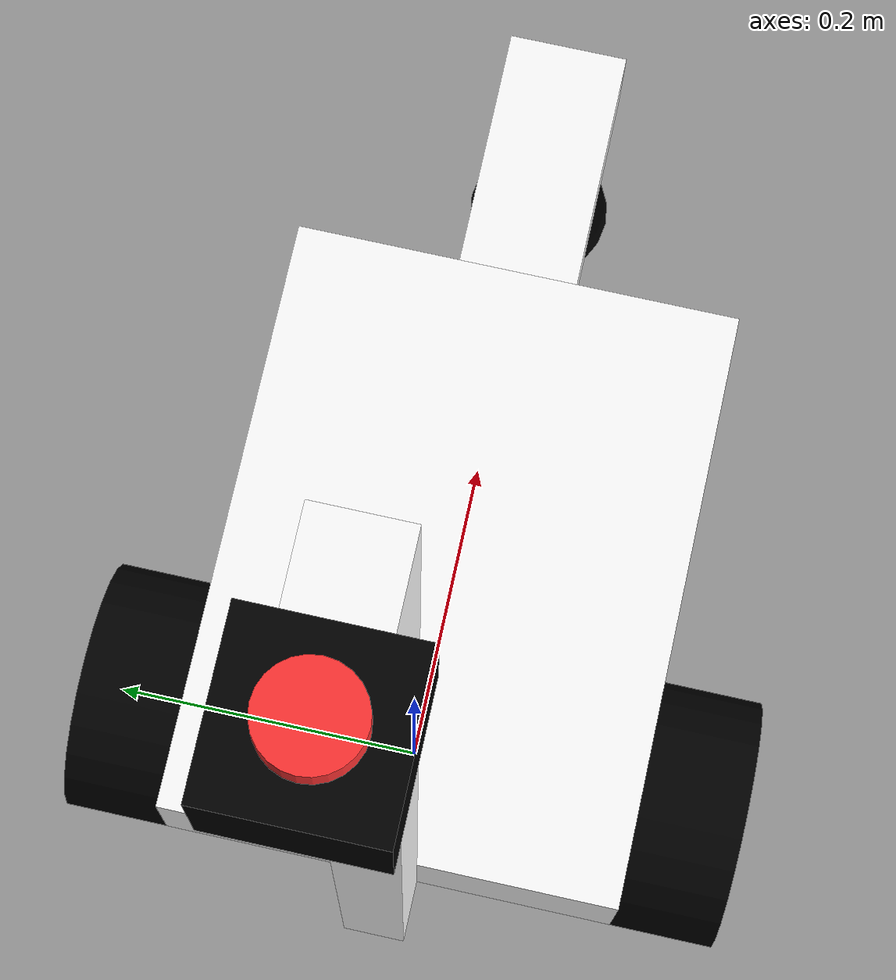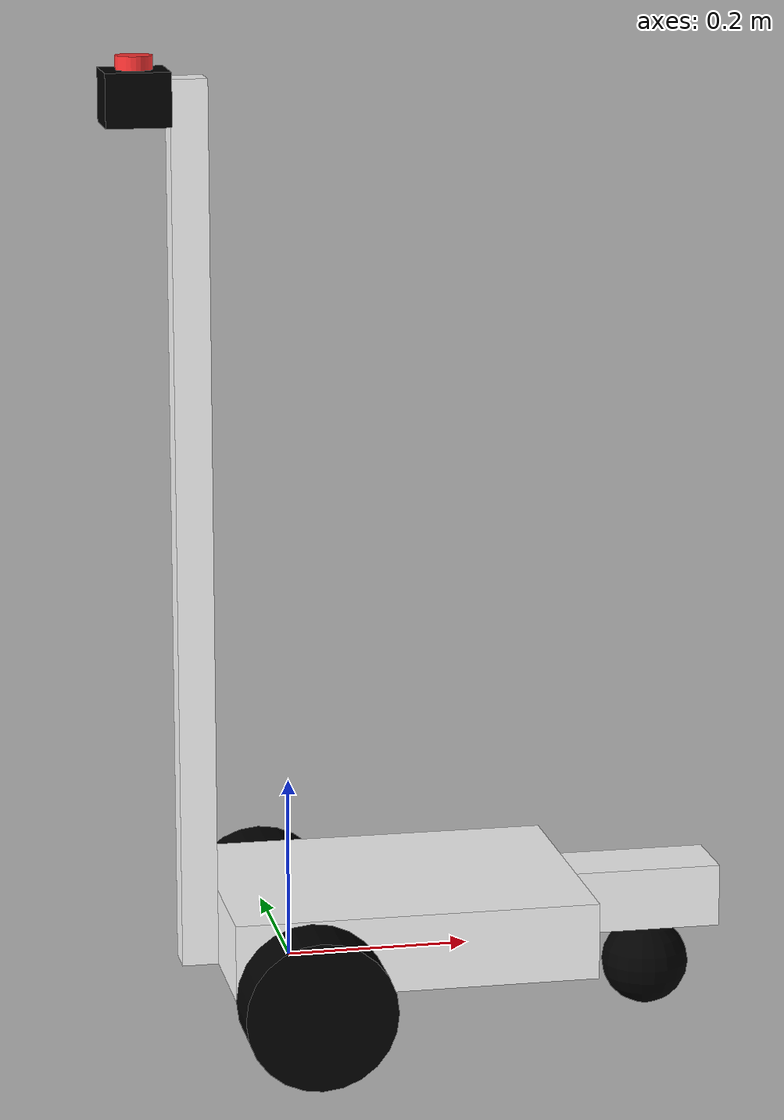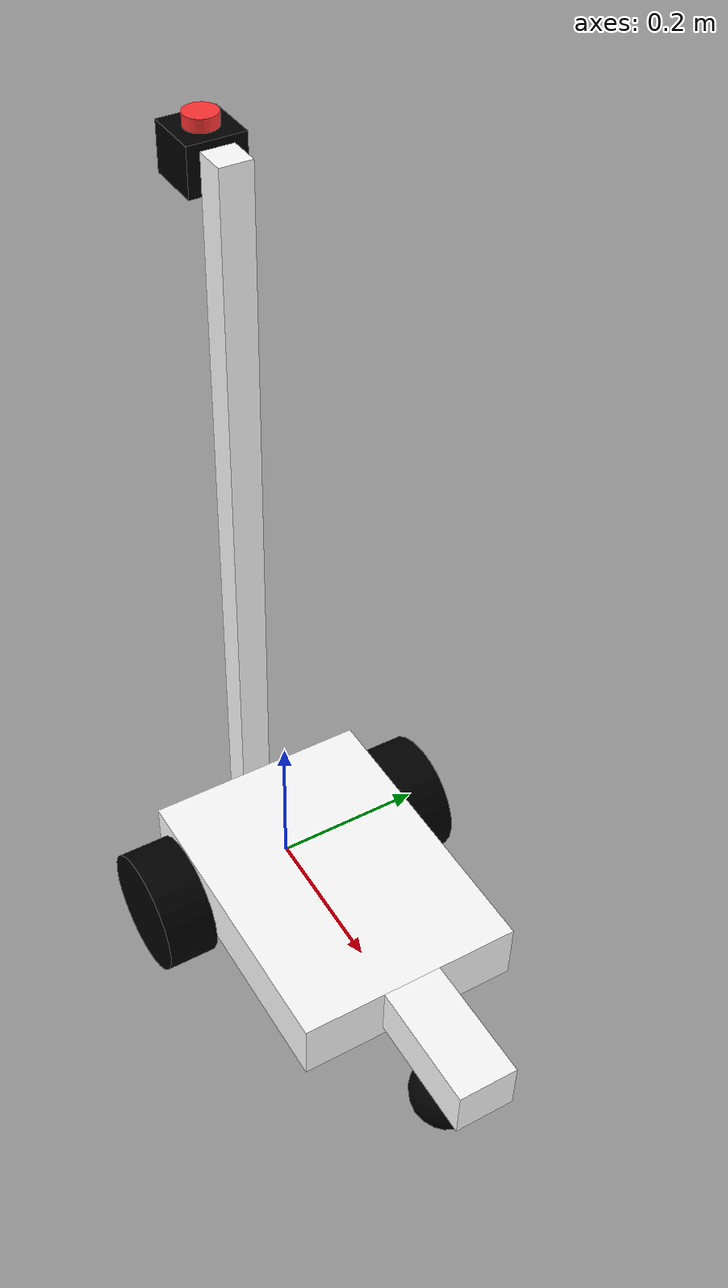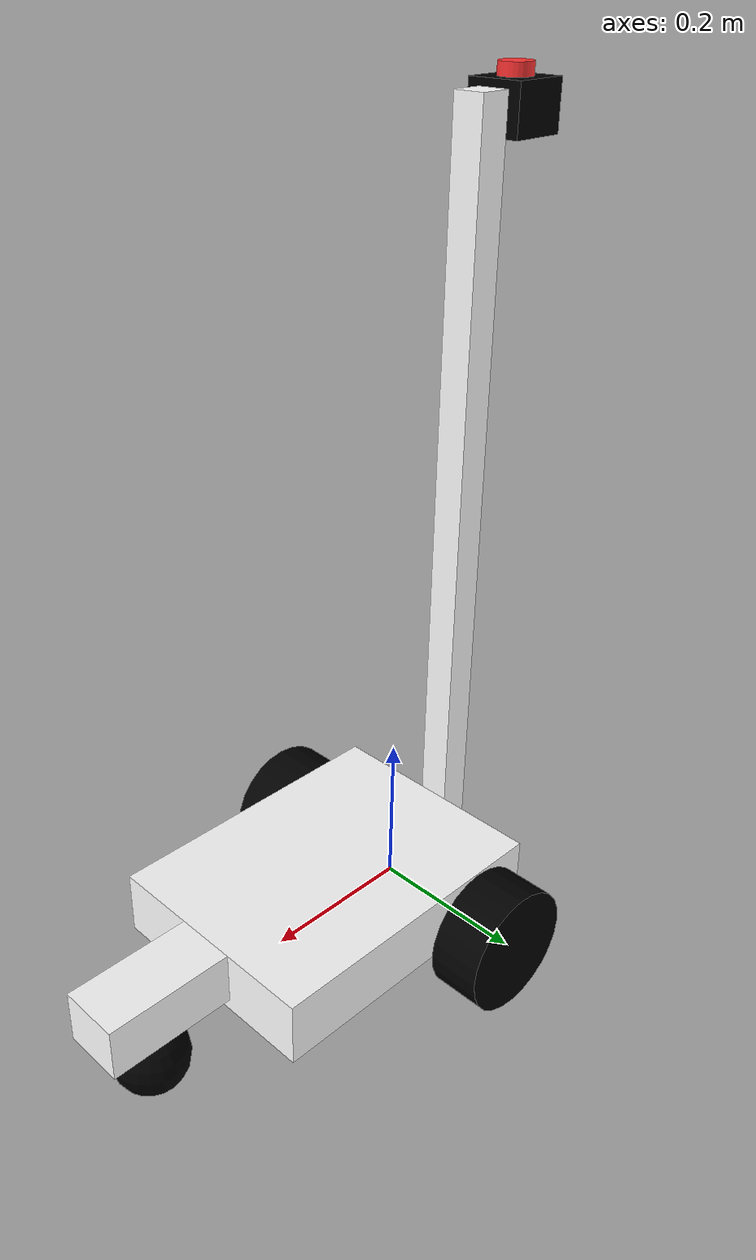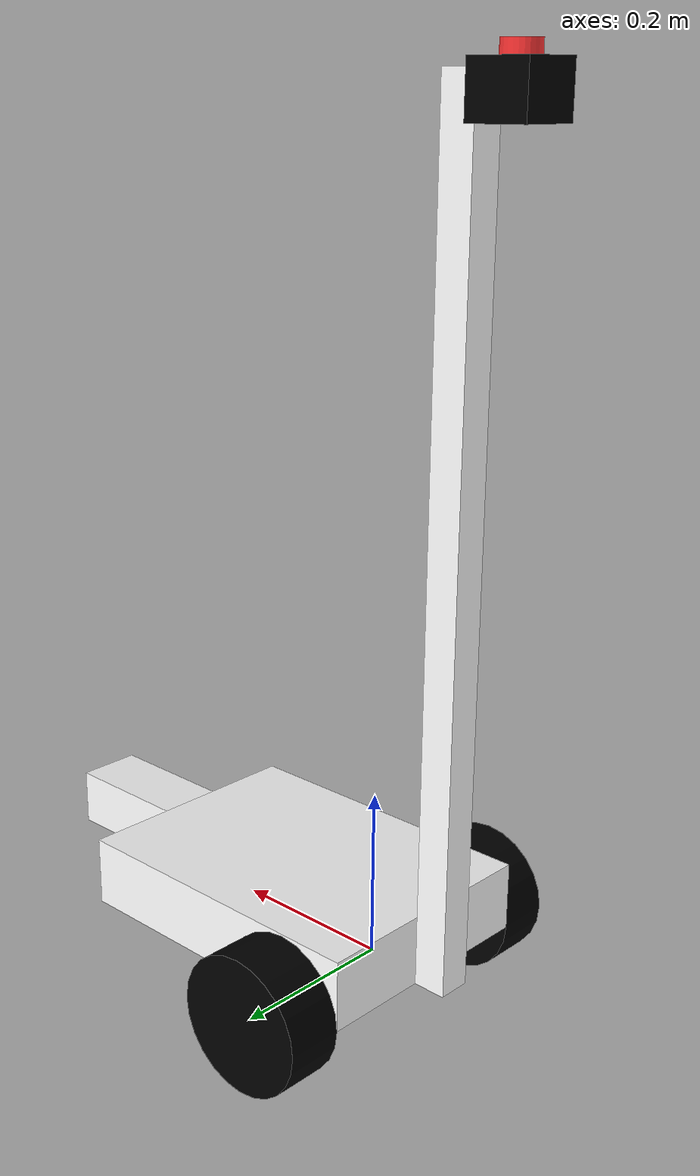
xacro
<?xml version="1.0"?>
<robot xmlns:xacro="http://www.ros.org/wiki/xacro" >

    <!-- Body Dimensions -->
    <xacro:property name="main_body_x_dim" value="0.4"/>
    <xacro:property name="main_body_y_dim" value="0.3"/>
    <xacro:property name="main_body_z_dim" value="0.085"/>

    <!-- Front Wheel Mount Dimensions -->
    <xacro:property name="front_wheel_mount_x_dim" value="0.165"/>
    <xacro:property name="front_wheel_mount_y_dim" value="0.08"/>
    <xacro:property name="front_wheel_mount_z_dim" value="0.07"/>

    <!-- Camera Mount Dimensions -->
    <xacro:property name="camera_mount_x_dim" value="0.04"/>
    <xacro:property name="camera_mount_y_dim" value="0.04"/>
    <xacro:property name="camera_mount_z_dim" value="0.975"/>

    <!-- Emergency Button Dimensions -->
    <xacro:property name="emergency_mount_x_dim" value="0.07"/>
    <xacro:property name="emergency_mount_y_dim" value="0.07"/>
    <xacro:property name="emergency_mount_z_dim" value="0.058"/>

    <xacro:property name="emergency_button_radius" value="0.02"/>
    <xacro:property name="emergency_button_length" value="0.03"/>

    <!-- Rear Wheel Dimensions -->
    <xacro:property name="wheel_link_radius" value="0.08255"/>
    <xacro:property name="wheel_link_length" value="0.068"/>
    <xacro:property name="wheel_link_z_location" value="0"/>

    <!-- Front Wheel Dimensions -->
    <xacro:property name="front_wheel_link_radius" value="${(wheel_link_radius+(main_body_z_dim-front_wheel_mount_z_dim))/2}"/>
    <xacro:property name="front_wheel_link_length" value="0.015"/>
    <xacro:property name="front_wheel_link_x_offset" value="0.075"/>
    <xacro:property name="front_wheel_link_x_location" value="${main_body_x_dim+front_wheel_mount_x_dim-wheel_link_radius-front_wheel_link_x_offset}"/>

    <!-- Material Density -->
    <xacro:property name="body_density" value="2710.0"/>
    <xacro:property name="wheel_density" value="2710.0"/>
    <xacro:property name="front_wheel_density" value="2710.0"/>
    <xacro:property name="emergency_button_density" value="2710.0"/>

    <!-- Pi Constant -->
    <xacro:property name="pi_const" value="3.14159265"/>

    <!-- Masses -->
    <xacro:property name="main_body_mass" value="${body_density*main_body_x_dim*main_body_y_dim*main_body_z_dim*0.41}"/>
    <xacro:property name="wheel_mount_mass" value="${body_density*front_wheel_mount_x_dim*front_wheel_mount_y_dim*front_wheel_mount_z_dim*0.41}"/>
    <xacro:property name="camera_mount_mass" value="${body_density*camera_mount_x_dim*camera_mount_y_dim*camera_mount_z_dim}"/>
    <xacro:property name="emergency_mount_mass" value="${emergency_button_density*emergency_mount_x_dim*emergency_mount_y_dim*emergency_mount_z_dim}"/>
    <xacro:property name="emergency_button_mass" value="${emergency_button_density*pi_const*emergency_button_radius*emergency_button_radius*emergency_button_length}"/>

    <xacro:property name="wheel_mass" value="${wheel_density*pi_const*wheel_link_radius*wheel_link_radius*wheel_link_length}"/>
    <xacro:property name="front_wheel_mass" value="${front_wheel_density*pi_const*front_wheel_link_radius*front_wheel_link_radius*front_wheel_link_length}"/>

    <!-- Moments of Inertia of the Wheels -->
    <xacro:property name="Iz_wheel" value="${0.5*wheel_mass*wheel_link_radius*wheel_link_radius}"/>
    <xacro:property name="I_wheel" value="${(1.0/12.0)*wheel_mass*(3.0*wheel_link_radius*wheel_link_radius+wheel_link_length*wheel_link_length)}"/>

    <xacro:property name="Iz_front_wheel" value="${0.5*front_wheel_mass*front_wheel_link_radius*front_wheel_link_radius}"/>
    <xacro:property name="I_front_wheel" value="${(1.0/12.0)*front_wheel_mass*(3.0*front_wheel_link_radius*front_wheel_link_radius+front_wheel_link_length*front_wheel_link_length)}"/>

    <material name="black">
        <color rgba="0 0 0 1"/>
    </material>

    <material name="white">
        <color rgba="1 1 1 1"/>
    </material>

    <material name="red">
        <color rgba="1 0.2 0.2 1"/>
    </material>

    <material name="blue">
        <color rgba="0.2 0.2 1 1"/>
    </material>

    <xacro:macro name="inertia_wheel">
        <inertial>
            <origin rpy="0 0 0" xyz="0 0 0"/>
            <mass value="${wheel_mass}"/>
            <inertia ixx="${I_wheel}" ixy="0.0" ixz="0.0" iyy="${I_wheel}" iyz="0.0" izz="${Iz_wheel}" />
        </inertial>
    </xacro:macro>

    <xacro:macro name="inertia_front_wheel">
        <inertial>
            <origin rpy="0 0 0" xyz="0 0 0"/>
            <mass value="${front_wheel_mass}"/>
            <inertia ixx="${I_front_wheel}" ixy="0.0" ixz="0.0" iyy="${I_front_wheel}" iyz="0.0" izz="${Iz_front_wheel}" />
        </inertial>
    </xacro:macro>

    <!-- BASE LINK -->

   <link name="base_footprint"/>

    <joint name="base_joint" type="fixed">
        <parent link="base_footprint"/>front_
        <child link="base_link"/>front_
        <origin xyz="0 0 0" rpy="0 0 0"/>
    </joint>

     <link name="base_link">
    </link>

    <!-- CHASSIS LINK -->
    <joint name="chassis_joint" type="fixed">
        <parent link="base_link"/>front_
        <child link="chassis"/>front_
        <origin xyz="${-wheel_link_radius} 0 0"/>
    </joint>

    <link name="chassis">

        <visual>
            <origin xyz="${main_body_x_dim*0.5} 0 ${main_body_z_dim*0.5}"/>
            <geometry>
                <box size="${main_body_x_dim} ${main_body_y_dim} ${main_body_z_dim}"/>
            </geometry>
            <material name="white"/>
        </visual>

        <collision>
            <origin xyz="${main_body_x_dim*0.5} 0 ${main_body_z_dim*0.5}"/>
            <geometry>
                <box size="${main_body_x_dim} ${main_body_y_dim} ${main_body_z_dim}"/>
            </geometry>
        </collision>

        <inertial>
            <origin xyz="${main_body_x_dim*0.5} 0 ${main_body_z_dim*0.5}"/>
            <mass value="${main_body_mass}" />
            <inertia ixx="${(1/12)*main_body_mass*(main_body_y_dim*main_body_y_dim+main_body_z_dim*main_body_z_dim)}" ixy="0.0" ixz="0.0" iyy="${(1/12)*main_body_mass*(main_body_x_dim*main_body_x_dim+main_body_z_dim*main_body_z_dim)}"  iyz="0.0" izz="${(1/12)*main_body_mass*(main_body_y_dim*main_body_y_dim+main_body_x_dim*main_body_x_dim)}"  />
        </inertial>

    </link>

    <gazebo reference="chassis">
    <material>Gazebo/White</material>
    </gazebo>

    <!-- CAMERA MOUNT LINK -->
    <joint name="camera_mount_joint" type="fixed">
        <parent link="chassis"/>front_
        <child link="camera_mount"/>front_
        <origin xyz="${-camera_mount_x_dim*0.5} 0 ${camera_mount_z_dim*0.5}"/>
    </joint>

    <link name="camera_mount">
        <visual>
            <geometry>
                <box size="${camera_mount_x_dim} ${camera_mount_y_dim} ${camera_mount_z_dim}"/>
            </geometry>
            <material name="white"/>
        </visual>

        <collision>
            <geometry>
                <box size="${camera_mount_x_dim} ${camera_mount_y_dim} ${camera_mount_z_dim}"/>
            </geometry>
        </collision>

        <inertial>
            <mass value="${camera_mount_mass}" />
            <inertia ixx="${(1/12)*camera_mount_mass*(camera_mount_y_dim*camera_mount_y_dim+camera_mount_z_dim*camera_mount_z_dim)}" ixy="0.0" ixz="0.0" iyy="${(1/12)*camera_mount_mass*(camera_mount_x_dim*camera_mount_x_dim+camera_mount_z_dim*camera_mount_z_dim)}"  iyz="0.0" izz="${(1/12)*camera_mount_mass*(camera_mount_y_dim*camera_mount_y_dim+camera_mount_x_dim*camera_mount_x_dim)}"  />
        </inertial>

    </link>

    <gazebo reference="camera_mount">
        <material>Gazebo/White</material>
    </gazebo>

    <!-- EMERGENCY MOUNT LINK -->
    <joint name="emergency_mount_joint" type="fixed">
        <parent link="camera_mount"/>front_
        <child link="emergency_mount"/>front_
        <origin xyz="${-emergency_mount_x_dim+(emergency_mount_x_dim-camera_mount_x_dim)*0.5} 0 ${camera_mount_z_dim*0.5-0.02}"/>
    </joint>

    <link name="emergency_mount">
        <visual>
            <geometry>
                <box size="${emergency_mount_x_dim} ${emergency_mount_y_dim} ${emergency_mount_z_dim}"/>
            </geometry>
            <material name="black"/>
        </visual>

        <collision>
            <geometry>
                <box size="${emergency_mount_x_dim} ${emergency_mount_y_dim} ${emergency_mount_z_dim}"/>
            </geometry>
        </collision>

        <inertial>
            <mass value="${emergency_mount_mass}" />
            <inertia ixx="${(1/12)*emergency_mount_mass*(emergency_mount_y_dim*emergency_mount_y_dim+emergency_mount_z_dim*emergency_mount_z_dim)}" ixy="0.0" ixz="0.0" iyy="${(1/12)*emergency_mount_mass*(emergency_mount_x_dim*emergency_mount_x_dim+emergency_mount_z_dim*emergency_mount_z_dim)}"  iyz="0.0" izz="${(1/12)*emergency_mount_mass*(emergency_mount_y_dim*emergency_mount_y_dim+emergency_mount_x_dim*emergency_mount_x_dim)}"  />
        </inertial>

    </link>

    <gazebo reference="emergency_mount">
        <material>Gazebo/Black</material>
    </gazebo>

    <!-- EMERGENCY BUTTON LINK -->
    <joint name="emergency_button_joint" type="fixed">
        <parent link="emergency_mount"/>front_
        <child link="emergency_button"/>front_
        <origin xyz="0 0 ${emergency_mount_z_dim*0.5}" />
    </joint>

    <link name="emergency_button">
        <visual>
            <geometry>
                <cylinder radius="${emergency_button_radius}" length="${emergency_button_length}"/>
            </geometry>
            <material name="red"/>
        </visual>

        <collision>
            <geometry>
                <cylinder radius="${emergency_button_radius}" length="${emergency_button_length}"/>
            </geometry>
        </collision>

        <inertial>
            <mass value="${emergency_button_mass}"/>
            <inertia ixx="${(1.0/12.0)*emergency_button_mass*(3.0*emergency_button_radius*emergency_button_radius+emergency_button_length*emergency_button_length)}" ixy="0.0" ixz="0.0" iyy="${(1.0/12.0)*emergency_button_mass*(3.0*emergency_button_radius*emergency_button_radius+emergency_button_length*emergency_button_length)}" iyz="0.0" izz="${0.5*emergency_button_mass*emergency_button_radius*emergency_button_radius}" />
        </inertial>

    </link>

    <gazebo reference="emergency_button">
        <material>Gazebo/Red</material>
    </gazebo>

    <!-- WHEEL MOUNT LINK -->
    <joint name="wheel_mount_joint" type="fixed">
        <parent link="chassis"/>front_
        <child link="wheel_mount"/>front_
        <origin xyz="0 0 0"/>
    </joint>

    <link name="wheel_mount">

        <visual>
            <origin xyz="${main_body_x_dim+front_wheel_mount_x_dim*0.5} 0 ${main_body_z_dim*0.5+(main_body_z_dim-front_wheel_mount_z_dim)*0.5}"/>
            <geometry>
                <box size="${front_wheel_mount_x_dim} ${front_wheel_mount_y_dim} ${front_wheel_mount_z_dim}"/>
            </geometry>
            <material name="white"/>
        </visual>

        <collision>
            <origin xyz="${main_body_x_dim+front_wheel_mount_x_dim*0.5} 0 ${main_body_z_dim*0.5+(main_body_z_dim-front_wheel_mount_z_dim)*0.5}"/>
            <geometry>
                <box size="${front_wheel_mount_x_dim} ${front_wheel_mount_y_dim} ${front_wheel_mount_z_dim}"/>
            </geometry>
        </collision>

        <inertial>
            <origin xyz="${main_body_x_dim+front_wheel_mount_x_dim*0.5} 0 ${main_body_z_dim*0.5+(main_body_z_dim-front_wheel_mount_z_dim)*0.5}"/>
            <mass value="${wheel_mount_mass}" />
            <inertia ixx="${(1/12)*wheel_mount_mass*(front_wheel_mount_y_dim*front_wheel_mount_y_dim+front_wheel_mount_z_dim*front_wheel_mount_z_dim)}" ixy="0.0" ixz="0.0" iyy="${(1/12)*wheel_mount_mass*(front_wheel_mount_x_dim*front_wheel_mount_x_dim+front_wheel_mount_z_dim*front_wheel_mount_z_dim)}"  iyz="0.0" izz="${(1/12)*wheel_mount_mass*(front_wheel_mount_y_dim*front_wheel_mount_y_dim+front_wheel_mount_x_dim*front_wheel_mount_x_dim)}"  />
        </inertial>

    </link>

    <!-- LEFT WHEEL LINK -->

    <joint name="left_wheel_joint" type="continuous">
        <parent link="base_link"/>
        <child link="left_wheel"/>
        <origin xyz="0 ${main_body_y_dim/2+wheel_link_length/2} ${wheel_link_z_location}" rpy="${-pi_const/2} 0 0" />
        <axis xyz="0 0 1"/>
        <limit effort="1000" velocity="1000" />
        <dynamics damping="1.0" friction="1.0"/>
    </joint>

    <link name="left_wheel">
        <visual>
            <geometry>
                <cylinder radius="${wheel_link_radius}" length="${wheel_link_length}"/>
            </geometry>
            <material name="black"/>
        </visual>
        <collision>
            <geometry>
                <cylinder radius="${wheel_link_radius}" length="${wheel_link_length}"/>
            </geometry>
        </collision>

        <xacro:inertia_wheel />
    </link>

    <gazebo reference="left_wheel">
    <mu1>0.2</mu1>
    <mu2>0.2</mu2>
    <material>Gazebo/Black</material>
    </gazebo>

    <!-- RIGHT WHEEL LINK -->

    <joint name="right_wheel_joint" type="continuous">
        <parent link="base_link"/>
        <child link="right_wheel"/>
        <origin xyz="0 ${-main_body_y_dim/2-wheel_link_length/2} ${wheel_link_z_location}" rpy="${pi_const/2} 0 0" />
        <axis xyz="0 0 -1"/>
        <limit effort="1000" velocity="1000" />
        <dynamics damping="1.0" friction="1.0"/>
    </joint>

    <link name="right_wheel">
        <visual>
            <geometry>
                <cylinder radius="${wheel_link_radius}" length="${wheel_link_length}"/>
            </geometry>
            <material name="black"/>
        </visual>
        <collision>
            <geometry>
                <cylinder radius="${wheel_link_radius}" length="${wheel_link_length}"/>
            </geometry>
        </collision>

        <xacro:inertia_wheel />
    </link>

    <gazebo reference="right_wheel">
    <mu1>0.2</mu1>
    <mu2>0.2</mu2>
    <material>Gazebo/Black</material>
    </gazebo>

    <!-- CASTER WHEEL LINK -->

    <joint name="caster_wheel_joint" type="fixed">
        <parent link="base_link"/>
        <child link="caster_wheel"/>
        <origin xyz="${front_wheel_link_x_location} 0 ${(main_body_z_dim-front_wheel_mount_z_dim)-front_wheel_link_radius}"/>
    </joint>

    <link name="caster_wheel">
        <visual>
            <geometry>
                <sphere radius="${front_wheel_link_radius}"/>
            </geometry>
            <material name="black"/>
        </visual>
        <collision>
            <geometry>
                <sphere radius="${front_wheel_link_radius}"/>
            </geometry>
        </collision>
        <xacro:inertia_front_wheel />
    </link>

    <gazebo reference="caster_wheel">
    <mu1>0.001</mu1>
    <mu2>0.001</mu2>
    <material>Gazebo/Black</material>
    </gazebo>

</robot>
